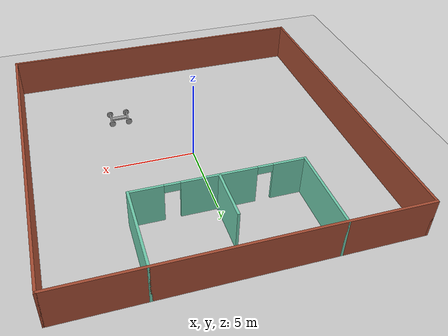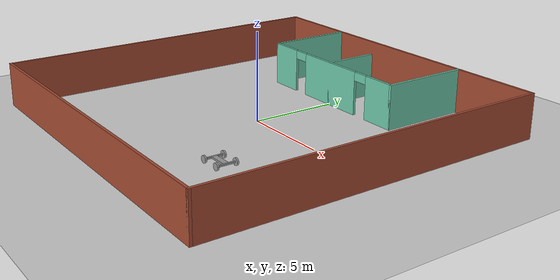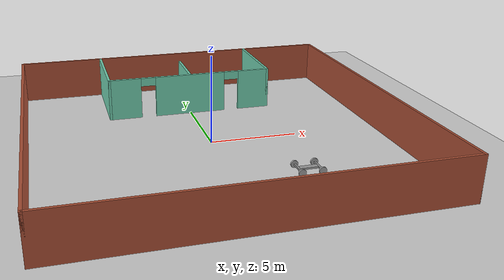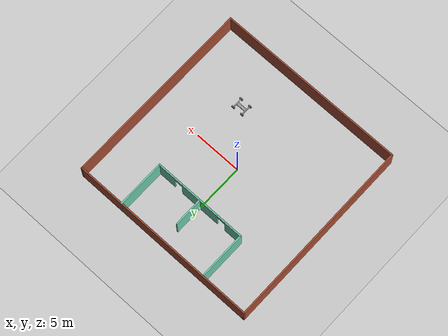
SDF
<sdf version="1.6">
 <world name="default">
  <model name="ground_plane">
   <static>1</static>
   <link name="link">
    <collision name="collision">
     <geometry><plane><normal>0 0 1</normal><size>100 100</size></plane></geometry>
     <surface>
      <contact><collide_bitmask>65535</collide_bitmask></contact>
      <friction><ode><mu>100</mu><mu2>50</mu2></ode></friction>
     </surface>
    </collision>
    <visual name="visual">
     <cast_shadows>0</cast_shadows>
     <geometry><plane><normal>0 0 1</normal><size>100 100</size></plane></geometry>
     <material>
      <script><uri>file://media/materials/scripts/gazebo.material</uri><name>Gazebo/Grey</name></script>
     </material>
    </visual>
   </link>
  </model>
  <model name="Room">
   <pose>-0.006109 0.018836 0 0 -0 0</pose>
   <link name="Wall_0">
    <collision name="Wall_0_Collision">
     <geometry><box><size>20.15 0.15 2.5</size></box></geometry>
     <pose>0 0 1.25 0 -0 0</pose>
    </collision>
    <visual name="Wall_0_Visual">
     <pose>0 0 1.25 0 -0 0</pose>
     <geometry><box><size>20.15 0.15 2.5</size></box></geometry>
     <material>
      <script><uri>file://media/materials/scripts/gazebo.material</uri><name>Gazebo/Bricks</name></script>
      <ambient>1 1 1 1</ambient>
     </material>
     <meta><layer>0</layer></meta>
    </visual>
    <pose>-10 0 0 0 -0 -1.5708</pose>
   </link>
   <link name="Wall_10">
    <collision name="Wall_10_Collision">
     <geometry><box><size>5.15 0.15 2.5</size></box></geometry>
     <pose>0 0 1.25 0 -0 0</pose>
    </collision>
    <visual name="Wall_10_Visual">
     <pose>0 0 1.25 0 -0 0</pose>
     <geometry><box><size>5.15 0.15 2.5</size></box></geometry>
     <material>
      <script><uri>file://media/materials/scripts/gazebo.material</uri><name>Gazebo/Grey</name></script>
      <ambient>0.435294 0.796078 0.67451 1</ambient>
     </material>
     <meta><layer>0</layer></meta>
    </visual>
    <pose>5 7.5 0 0 -0 1.5708</pose>
   </link>
   <link name="Wall_12">
    <collision name="Wall_12_Collision">
     <geometry><box><size>3.15 0.15 2.5</size></box></geometry>
     <pose>0 0 1.25 0 -0 0</pose>
    </collision>
    <visual name="Wall_12_Visual">
     <pose>0 0 1.25 0 -0 0</pose>
     <geometry><box><size>3.15 0.15 2.5</size></box></geometry>
     <material>
      <script><uri>file://media/materials/scripts/gazebo.material</uri><name>Gazebo/Grey</name></script>
      <ambient>0.435294 0.796078 0.67451 1</ambient>
     </material>
     <meta><layer>0</layer></meta>
    </visual>
    <pose>0 6.5 0 0 -0 1.5708</pose>
   </link>
   <link name="Wall_2">
    <collision name="Wall_2_Collision">
     <geometry><box><size>20.15 0.15 2.5</size></box></geometry>
     <pose>0 0 1.25 0 -0 0</pose>
    </collision>
    <visual name="Wall_2_Visual">
     <pose>0 0 1.25 0 -0 0</pose>
     <geometry><box><size>20.15 0.15 2.5</size></box></geometry>
     <material>
      <script><uri>file://media/materials/scripts/gazebo.material</uri><name>Gazebo/Bricks</name></script>
      <ambient>1 1 1 1</ambient>
     </material>
     <meta><layer>0</layer></meta>
    </visual>
    <pose>0 10 0 0 -0 0</pose>
   </link>
   <link name="Wall_4">
    <collision name="Wall_4_Collision">
     <geometry><box><size>20.15 0.15 2.5</size></box></geometry>
     <pose>0 0 1.25 0 -0 0</pose>
    </collision>
    <visual name="Wall_4_Visual">
     <pose>0 0 1.25 0 -0 0</pose>
     <geometry><box><size>20.15 0.15 2.5</size></box></geometry>
     <material>
      <script><uri>file://media/materials/scripts/gazebo.material</uri><name>Gazebo/Bricks</name></script>
      <ambient>1 1 1 1</ambient>
     </material>
     <meta><layer>0</layer></meta>
    </visual>
    <pose>10 0 0 0 -0 -1.5708</pose>
   </link>
   <link name="Wall_6">
    <collision name="Wall_6_Collision">
     <geometry><box><size>20.15 0.15 2.5</size></box></geometry>
     <pose>0 0 1.25 0 -0 0</pose>
    </collision>
    <visual name="Wall_6_Visual">
     <pose>0 0 1.25 0 -0 0</pose>
     <geometry><box><size>20.15 0.15 2.5</size></box></geometry>
     <material>
      <script><uri>file://media/materials/scripts/gazebo.material</uri><name>Gazebo/Bricks</name></script>
      <ambient>1 1 1 1</ambient>
     </material>
     <meta><layer>0</layer></meta>
    </visual>
    <pose>0 -10 0 0 -0 0</pose>
   </link>
   <link name="Wall_8">
    <collision name="Wall_8_Collision">
     <geometry><box><size>5.15 0.15 2.5</size></box></geometry>
     <pose>0 0 1.25 0 -0 0</pose>
    </collision>
    <visual name="Wall_8_Visual">
     <pose>0 0 1.25 0 -0 0</pose>
     <geometry><box><size>5.15 0.15 2.5</size></box></geometry>
     <material>
      <script><uri>file://media/materials/scripts/gazebo.material</uri><name>Gazebo/Grey</name></script>
      <ambient>0.435294 0.796078 0.67451 1</ambient>
     </material>
     <meta><layer>0</layer></meta>
    </visual>
    <pose>-5 7.5 0 0 -0 -1.5708</pose>
   </link>
   <link name="Wall_9">
    <pose>0 5 0 0 -0 0</pose>
    <visual name="Wall_9_Visual_0">
     <pose>-4.07964 0 1.25 0 -0 0</pose>
     <geometry><box><size>1.99073 0.15 2.5</size></box></geometry>
     <material>
      <script><uri>file://media/materials/scripts/gazebo.material</uri><name>Gazebo/Grey</name></script>
      <ambient>0.435294 0.796078 0.67451 1</ambient>
     </material>
     <meta><layer>0</layer></meta>
    </visual>
    <collision name="Wall_9_Collision_0">
     <geometry><box><size>1.99073 0.15 2.5</size></box></geometry>
     <pose>-4.07964 0 1.25 0 -0 0</pose>
    </collision>
    <visual name="Wall_9_Visual_1">
     <pose>-0.008186 0 1.25 0 -0 0</pose>
     <geometry><box><size>4.35217 0.15 2.5</size></box></geometry>
     <material>
      <script><uri>file://media/materials/scripts/gazebo.material</uri><name>Gazebo/Grey</name></script>
      <ambient>0.435294 0.796078 0.67451 1</ambient>
     </material>
     <meta><layer>0</layer></meta>
    </visual>
    <collision name="Wall_9_Collision_1">
     <geometry><box><size>4.35217 0.15 2.5</size></box></geometry>
     <pose>-0.008186 0 1.25 0 -0 0</pose>
    </collision>
    <visual name="Wall_9_Visual_2">
     <pose>4.07145 0 1.25 0 -0 0</pose>
     <geometry><box><size>2.0071 0.15 2.5</size></box></geometry>
     <material>
      <script><uri>file://media/materials/scripts/gazebo.material</uri><name>Gazebo/Grey</name></script>
      <ambient>0.435294 0.796078 0.67451 1</ambient>
     </material>
     <meta><layer>0</layer></meta>
    </visual>
    <collision name="Wall_9_Collision_2">
     <geometry><box><size>2.0071 0.15 2.5</size></box></geometry>
     <pose>4.07145 0 1.25 0 -0 0</pose>
    </collision>
    <visual name="Wall_9_Visual_3">
     <pose>-2.63427 0 2.25 0 -0 0</pose>
     <geometry><box><size>0.9 0.15 0.5</size></box></geometry>
     <material>
      <script><uri>file://media/materials/scripts/gazebo.material</uri><name>Gazebo/Grey</name></script>
      <ambient>0.435294 0.796078 0.67451 1</ambient>
     </material>
     <meta><layer>0</layer></meta>
    </visual>
    <collision name="Wall_9_Collision_3">
     <geometry><box><size>0.9 0.15 0.5</size></box></geometry>
     <pose>-2.63427 0 2.25 0 -0 0</pose>
    </collision>
    <visual name="Wall_9_Visual_4">
     <pose>2.6179 0 2.25 0 -0 0</pose>
     <geometry><box><size>0.9 0.15 0.5</size></box></geometry>
     <material>
      <script><uri>file://media/materials/scripts/gazebo.material</uri><name>Gazebo/Grey</name></script>
      <ambient>0.435294 0.796078 0.67451 1</ambient>
     </material>
     <meta><layer>0</layer></meta>
    </visual>
    <collision name="Wall_9_Collision_4">
     <geometry><box><size>0.9 0.15 0.5</size></box></geometry>
     <pose>2.6179 0 2.25 0 -0 0</pose>
    </collision>
   </link>
   <static>1</static>
  </model>
  <model name="humanoid1_1">
   <link name="link_0">
    <inertial>
     <mass>1</mass>
     <inertia>
      <ixx>0.166667</ixx>
      <ixy>0</ixy>
      <ixz>0</ixz>
      <iyy>0.166667</iyy>
      <iyz>0</iyz>
      <izz>0.166667</izz>
     </inertia>
    </inertial>
    <pose>-0.027143 0 0 0 -0 0</pose>
    <visual name="visual">
     <geometry><box><size>1 0.3 0.1</size></box></geometry>
     <material>
      <lighting>1</lighting>
      <script><uri>file://media/materials/scripts/gazebo.material</uri><name>Gazebo/Grey</name></script>
      <shader type="pixel"><normal_map>__default__</normal_map></shader>
      <ambient>0.3 0.3 0.3 1</ambient>
      <diffuse>0.7 0.7 0.7 1</diffuse>
      <specular>0.01 0.01 0.01 1</specular>
      <emissive>0 0 0 1</emissive>
     </material>
    </visual>
    <collision name="collision">
     <geometry><box><size>1 0.3 0.1</size></box></geometry>
     <surface>
      <friction>
       <ode><mu>1</mu><mu2>1</mu2><fdir1>0 0 0</fdir1><slip1>0</slip1><slip2>0</slip2></ode>
       <torsional>
        <coefficient>1</coefficient>
        <patch_radius>0</patch_radius>
        <surface_radius>0</surface_radius>
        <use_patch_radius>1</use_patch_radius>
        <ode><slip>0</slip></ode>
       </torsional>
      </friction>
      <bounce><restitution_coefficient>0</restitution_coefficient><threshold>1e+06</threshold></bounce>
      <contact>
       <collide_without_contact>0</collide_without_contact>
       <collide_without_contact_bitmask>1</collide_without_contact_bitmask>
       <collide_bitmask>1</collide_bitmask>
       <ode>
        <soft_cfm>0</soft_cfm>
        <soft_erp>0.2</soft_erp>
        <kp>1e+13</kp>
        <kd>1</kd>
        <max_vel>0.01</max_vel>
        <min_depth>0</min_depth>
       </ode>
       <bullet>
        <split_impulse>1</split_impulse>
        <split_impulse_penetration_threshold>-0.01</split_impulse_penetration_threshold>
        <soft_cfm>0</soft_cfm>
        <soft_erp>0.2</soft_erp>
        <kp>1e+13</kp>
        <kd>1</kd>
       </bullet>
      </contact>
     </surface>
    </collision>
   </link>
   <link name="link_1_clone_clone">
    <inertial>
     <mass>1</mass>
     <inertia><ixx>0.145833</ixx><ixy>0</ixy><ixz>0</ixz><iyy>0.145833</iyy><iyz>0</iyz><izz>0.125</izz></inertia>
    </inertial>
    <pose>0.522857 -0.550019 0 1.5707 -0 0</pose>
    <visual name="visual">
     <geometry><cylinder><radius>0.2</radius><length>0.1</length></cylinder></geometry>
     <material>
      <lighting>1</lighting>
      <script><uri>file://media/materials/scripts/gazebo.material</uri><name>Gazebo/Grey</name></script>
      <shader type="pixel"><normal_map>__default__</normal_map></shader>
      <ambient>0.3 0.3 0.3 1</ambient>
      <diffuse>0.7 0.7 0.7 1</diffuse>
      <specular>0.01 0.01 0.01 1</specular>
      <emissive>0 0 0 1</emissive>
     </material>
    </visual>
    <collision name="collision">
     <geometry><cylinder><radius>0.2</radius><length>0.1</length></cylinder></geometry>
     <surface>
      <friction>
       <ode><mu>1</mu><mu2>1</mu2><fdir1>0 0 0</fdir1><slip1>0</slip1><slip2>0</slip2></ode>
       <torsional>
        <coefficient>1</coefficient>
        <patch_radius>0</patch_radius>
        <surface_radius>0</surface_radius>
        <use_patch_radius>1</use_patch_radius>
        <ode><slip>0</slip></ode>
       </torsional>
      </friction>
      <bounce><restitution_coefficient>0</restitution_coefficient><threshold>1e+06</threshold></bounce>
      <contact>
       <collide_without_contact>0</collide_without_contact>
       <collide_without_contact_bitmask>1</collide_without_contact_bitmask>
       <collide_bitmask>1</collide_bitmask>
       <ode>
        <soft_cfm>0</soft_cfm>
        <soft_erp>0.2</soft_erp>
        <kp>1e+13</kp>
        <kd>1</kd>
        <max_vel>0.01</max_vel>
        <min_depth>0</min_depth>
       </ode>
       <bullet>
        <split_impulse>1</split_impulse>
        <split_impulse_penetration_threshold>-0.01</split_impulse_penetration_threshold>
        <soft_cfm>0</soft_cfm>
        <soft_erp>0.2</soft_erp>
        <kp>1e+13</kp>
        <kd>1</kd>
       </bullet>
      </contact>
     </surface>
    </collision>
   </link>
   <link name="link_1_clone_clone_0">
    <inertial>
     <mass>1</mass>
     <inertia><ixx>0.145833</ixx><ixy>0</ixy><ixz>0</ixz><iyy>0.145833</iyy><iyz>0</iyz><izz>0.125</izz></inertia>
    </inertial>
    <pose>-0.577143 -0.550019 0 1.5707 -0 0</pose>
    <visual name="visual">
     <geometry><cylinder><radius>0.2</radius><length>0.1</length></cylinder></geometry>
     <material>
      <lighting>1</lighting>
      <script><uri>file://media/materials/scripts/gazebo.material</uri><name>Gazebo/Grey</name></script>
      <shader type="pixel"><normal_map>__default__</normal_map></shader>
      <ambient>0.3 0.3 0.3 1</ambient>
      <diffuse>0.7 0.7 0.7 1</diffuse>
      <specular>0.01 0.01 0.01 1</specular>
      <emissive>0 0 0 1</emissive>
     </material>
    </visual>
    <collision name="collision">
     <geometry><cylinder><radius>0.2</radius><length>0.1</length></cylinder></geometry>
     <surface>
      <friction>
       <ode><mu>1</mu><mu2>1</mu2><fdir1>0 0 0</fdir1><slip1>0</slip1><slip2>0</slip2></ode>
       <torsional>
        <coefficient>1</coefficient>
        <patch_radius>0</patch_radius>
        <surface_radius>0</surface_radius>
        <use_patch_radius>1</use_patch_radius>
        <ode><slip>0</slip></ode>
       </torsional>
      </friction>
      <bounce><restitution_coefficient>0</restitution_coefficient><threshold>1e+06</threshold></bounce>
      <contact>
       <collide_without_contact>0</collide_without_contact>
       <collide_without_contact_bitmask>1</collide_without_contact_bitmask>
       <collide_bitmask>1</collide_bitmask>
       <ode>
        <soft_cfm>0</soft_cfm>
        <soft_erp>0.2</soft_erp>
        <kp>1e+13</kp>
        <kd>1</kd>
        <max_vel>0.01</max_vel>
        <min_depth>0</min_depth>
       </ode>
       <bullet>
        <split_impulse>1</split_impulse>
        <split_impulse_penetration_threshold>-0.01</split_impulse_penetration_threshold>
        <soft_cfm>0</soft_cfm>
        <soft_erp>0.2</soft_erp>
        <kp>1e+13</kp>
        <kd>1</kd>
       </bullet>
      </contact>
     </surface>
    </collision>
   </link>
   <link name="link_1_clone_clone_0_clone">
    <inertial>
     <mass>1</mass>
     <inertia><ixx>0.145833</ixx><ixy>0</ixy><ixz>0</ixz><iyy>0.145833</iyy><iyz>0</iyz><izz>0.125</izz></inertia>
    </inertial>
    <pose>-0.577143 0.550019 0 1.5707 -0 0</pose>
    <visual name="visual">
     <geometry><cylinder><radius>0.2</radius><length>0.1</length></cylinder></geometry>
     <material>
      <lighting>1</lighting>
      <script><uri>file://media/materials/scripts/gazebo.material</uri><name>Gazebo/Grey</name></script>
      <shader type="pixel"><normal_map>__default__</normal_map></shader>
      <ambient>0.3 0.3 0.3 1</ambient>
      <diffuse>0.7 0.7 0.7 1</diffuse>
      <specular>0.01 0.01 0.01 1</specular>
      <emissive>0 0 0 1</emissive>
     </material>
    </visual>
    <collision name="collision">
     <geometry><cylinder><radius>0.2</radius><length>0.1</length></cylinder></geometry>
     <surface>
      <friction>
       <ode><mu>1</mu><mu2>1</mu2><fdir1>0 0 0</fdir1><slip1>0</slip1><slip2>0</slip2></ode>
       <torsional>
        <coefficient>1</coefficient>
        <patch_radius>0</patch_radius>
        <surface_radius>0</surface_radius>
        <use_patch_radius>1</use_patch_radius>
        <ode><slip>0</slip></ode>
       </torsional>
      </friction>
      <bounce><restitution_coefficient>0</restitution_coefficient><threshold>1e+06</threshold></bounce>
      <contact>
       <collide_without_contact>0</collide_without_contact>
       <collide_without_contact_bitmask>1</collide_without_contact_bitmask>
       <collide_bitmask>1</collide_bitmask>
       <ode>
        <soft_cfm>0</soft_cfm>
        <soft_erp>0.2</soft_erp>
        <kp>1e+13</kp>
        <kd>1</kd>
        <max_vel>0.01</max_vel>
        <min_depth>0</min_depth>
       </ode>
       <bullet>
        <split_impulse>1</split_impulse>
        <split_impulse_penetration_threshold>-0.01</split_impulse_penetration_threshold>
        <soft_cfm>0</soft_cfm>
        <soft_erp>0.2</soft_erp>
        <kp>1e+13</kp>
        <kd>1</kd>
       </bullet>
      </contact>
     </surface>
    </collision>
   </link>
   <link name="link_1_clone_clone_1">
    <inertial>
     <mass>1</mass>
     <inertia><ixx>0.145833</ixx><ixy>0</ixy><ixz>0</ixz><iyy>0.145833</iyy><iyz>0</iyz><izz>0.125</izz></inertia>
    </inertial>
    <pose>0.522857 0.550019 0 1.5707 -0 0</pose>
    <visual name="visual">
     <geometry><cylinder><radius>0.2</radius><length>0.1</length></cylinder></geometry>
     <material>
      <lighting>1</lighting>
      <script><uri>file://media/materials/scripts/gazebo.material</uri><name>Gazebo/Grey</name></script>
      <shader type="pixel"><normal_map>__default__</normal_map></shader>
      <ambient>0.3 0.3 0.3 1</ambient>
      <diffuse>0.7 0.7 0.7 1</diffuse>
      <specular>0.01 0.01 0.01 1</specular>
      <emissive>0 0 0 1</emissive>
     </material>
    </visual>
    <collision name="collision">
     <geometry><cylinder><radius>0.2</radius><length>0.1</length></cylinder></geometry>
     <surface>
      <friction>
       <ode><mu>1</mu><mu2>1</mu2><fdir1>0 0 0</fdir1><slip1>0</slip1><slip2>0</slip2></ode>
       <torsional>
        <coefficient>1</coefficient>
        <patch_radius>0</patch_radius>
        <surface_radius>0</surface_radius>
        <use_patch_radius>1</use_patch_radius>
        <ode><slip>0</slip></ode>
       </torsional>
      </friction>
      <bounce><restitution_coefficient>0</restitution_coefficient><threshold>1e+06</threshold></bounce>
      <contact>
       <collide_without_contact>0</collide_without_contact>
       <collide_without_contact_bitmask>1</collide_without_contact_bitmask>
       <collide_bitmask>1</collide_bitmask>
       <ode>
        <soft_cfm>0</soft_cfm>
        <soft_erp>0.2</soft_erp>
        <kp>1e+13</kp>
        <kd>1</kd>
        <max_vel>0.01</max_vel>
        <min_depth>0</min_depth>
       </ode>
       <bullet>
        <split_impulse>1</split_impulse>
        <split_impulse_penetration_threshold>-0.01</split_impulse_penetration_threshold>
        <soft_cfm>0</soft_cfm>
        <soft_erp>0.2</soft_erp>
        <kp>1e+13</kp>
        <kd>1</kd>
       </bullet>
      </contact>
     </surface>
    </collision>
   </link>
   <link name="link_3">
    <inertial>
     <mass>1</mass>
     <inertia>
      <ixx>0.166667</ixx>
      <ixy>0</ixy>
      <ixz>0</ixz>
      <iyy>0.166667</iyy>
      <iyz>0</iyz>
      <izz>0.166667</izz>
     </inertia>
    </inertial>
    <pose>-0.577143 0 0 0 -0 0</pose>
    <visual name="visual">
     <geometry><box><size>0.1 1 0.1</size></box></geometry>
     <material>
      <lighting>1</lighting>
      <script><uri>file://media/materials/scripts/gazebo.material</uri><name>Gazebo/Grey</name></script>
      <shader type="pixel"><normal_map>__default__</normal_map></shader>
      <ambient>0.3 0.3 0.3 1</ambient>
      <diffuse>0.7 0.7 0.7 1</diffuse>
      <specular>0.01 0.01 0.01 1</specular>
      <emissive>0 0 0 1</emissive>
     </material>
    </visual>
    <collision name="collision">
     <geometry><box><size>0.1 1 0.1</size></box></geometry>
     <surface>
      <friction>
       <ode><mu>1</mu><mu2>1</mu2><fdir1>0 0 0</fdir1><slip1>0</slip1><slip2>0</slip2></ode>
       <torsional>
        <coefficient>1</coefficient>
        <patch_radius>0</patch_radius>
        <surface_radius>0</surface_radius>
        <use_patch_radius>1</use_patch_radius>
        <ode><slip>0</slip></ode>
       </torsional>
      </friction>
      <bounce><restitution_coefficient>0</restitution_coefficient><threshold>1e+06</threshold></bounce>
      <contact>
       <collide_without_contact>0</collide_without_contact>
       <collide_without_contact_bitmask>1</collide_without_contact_bitmask>
       <collide_bitmask>1</collide_bitmask>
       <ode>
        <soft_cfm>0</soft_cfm>
        <soft_erp>0.2</soft_erp>
        <kp>1e+13</kp>
        <kd>1</kd>
        <max_vel>0.01</max_vel>
        <min_depth>0</min_depth>
       </ode>
       <bullet>
        <split_impulse>1</split_impulse>
        <split_impulse_penetration_threshold>-0.01</split_impulse_penetration_threshold>
        <soft_cfm>0</soft_cfm>
        <soft_erp>0.2</soft_erp>
        <kp>1e+13</kp>
        <kd>1</kd>
       </bullet>
      </contact>
     </surface>
    </collision>
   </link>
   <link name="link_3_clone">
    <inertial>
     <mass>1</mass>
     <inertia>
      <ixx>0.166667</ixx>
      <ixy>0</ixy>
      <ixz>0</ixz>
      <iyy>0.166667</iyy>
      <iyz>0</iyz>
      <izz>0.166667</izz>
     </inertia>
    </inertial>
    <pose>0.522857 0 0 0 -0 0</pose>
    <visual name="visual">
     <geometry><box><size>0.1 1 0.1</size></box></geometry>
     <material>
      <lighting>1</lighting>
      <script><uri>file://media/materials/scripts/gazebo.material</uri><name>Gazebo/Grey</name></script>
      <shader type="pixel"><normal_map>__default__</normal_map></shader>
      <ambient>0.3 0.3 0.3 1</ambient>
      <diffuse>0.7 0.7 0.7 1</diffuse>
      <specular>0.01 0.01 0.01 1</specular>
      <emissive>0 0 0 1</emissive>
     </material>
    </visual>
    <collision name="collision">
     <geometry><box><size>0.1 1 0.1</size></box></geometry>
     <surface>
      <friction>
       <ode><mu>1</mu><mu2>1</mu2><fdir1>0 0 0</fdir1><slip1>0</slip1><slip2>0</slip2></ode>
       <torsional>
        <coefficient>1</coefficient>
        <patch_radius>0</patch_radius>
        <surface_radius>0</surface_radius>
        <use_patch_radius>1</use_patch_radius>
        <ode><slip>0</slip></ode>
       </torsional>
      </friction>
      <bounce><restitution_coefficient>0</restitution_coefficient><threshold>1e+06</threshold></bounce>
      <contact>
       <collide_without_contact>0</collide_without_contact>
       <collide_without_contact_bitmask>1</collide_without_contact_bitmask>
       <collide_bitmask>1</collide_bitmask>
       <ode>
        <soft_cfm>0</soft_cfm>
        <soft_erp>0.2</soft_erp>
        <kp>1e+13</kp>
        <kd>1</kd>
        <max_vel>0.01</max_vel>
        <min_depth>0</min_depth>
       </ode>
       <bullet>
        <split_impulse>1</split_impulse>
        <split_impulse_penetration_threshold>-0.01</split_impulse_penetration_threshold>
        <soft_cfm>0</soft_cfm>
        <soft_erp>0.2</soft_erp>
        <kp>1e+13</kp>
        <kd>1</kd>
       </bullet>
      </contact>
     </surface>
    </collision>
   </link>
   <joint name="link_0_JOINT_6" type="fixed">
    <parent>link_0</parent>
    <child>link_3_clone</child>
    <physics>
     <ode><limit><cfm>0</cfm><erp>0.2</erp></limit><suspension><cfm>0</cfm><erp>0.2</erp></suspension></ode>
    </physics>
   </joint>
   <joint name="link_0_JOINT_7" type="fixed">
    <parent>link_0</parent>
    <child>link_3</child>
    <physics>
     <ode><limit><cfm>0</cfm><erp>0.2</erp></limit><suspension><cfm>0</cfm><erp>0.2</erp></suspension></ode>
    </physics>
   </joint>
   <joint name="link_3_JOINT_10" type="revolute">
    <parent>link_3</parent>
    <child>link_1_clone_clone_0</child>
    <axis>
     <xyz>1 0 0</xyz>
     <use_parent_model_frame>0</use_parent_model_frame>
     <limit>
      <lower>-1.79769e+308</lower>
      <upper>1.79769e+308</upper>
      <effort>-1</effort>
      <velocity>-1</velocity>
     </limit>
     <dynamics>
      <spring_reference>0</spring_reference>
      <spring_stiffness>0</spring_stiffness>
      <damping>0</damping>
     </dynamics>
    </axis>
    <physics>
     <ode><limit><cfm>0</cfm><erp>0.2</erp></limit><suspension><cfm>0</cfm><erp>0.2</erp></suspension></ode>
    </physics>
   </joint>
   <joint name="link_3_JOINT_9" type="revolute">
    <parent>link_3</parent>
    <child>link_1_clone_clone_0_clone</child>
    <axis>
     <xyz>1 0 0</xyz>
     <use_parent_model_frame>0</use_parent_model_frame>
     <limit>
      <lower>-1.79769e+308</lower>
      <upper>1.79769e+308</upper>
      <effort>-1</effort>
      <velocity>-1</velocity>
     </limit>
     <dynamics>
      <spring_reference>0</spring_reference>
      <spring_stiffness>0</spring_stiffness>
      <damping>0</damping>
     </dynamics>
    </axis>
    <physics>
     <ode><limit><cfm>0</cfm><erp>0.2</erp></limit><suspension><cfm>0</cfm><erp>0.2</erp></suspension></ode>
    </physics>
   </joint>
   <joint name="link_3_clone_JOINT_11" type="revolute">
    <parent>link_3_clone</parent>
    <child>link_1_clone_clone</child>
    <axis>
     <xyz>1 0 0</xyz>
     <use_parent_model_frame>0</use_parent_model_frame>
     <limit>
      <lower>-1.79769e+308</lower>
      <upper>1.79769e+308</upper>
      <effort>-1</effort>
      <velocity>-1</velocity>
     </limit>
     <dynamics>
      <spring_reference>0</spring_reference>
      <spring_stiffness>0</spring_stiffness>
      <damping>0</damping>
     </dynamics>
    </axis>
    <physics>
     <ode><limit><cfm>0</cfm><erp>0.2</erp></limit><suspension><cfm>0</cfm><erp>0.2</erp></suspension></ode>
    </physics>
   </joint>
   <joint name="link_3_clone_JOINT_12" type="revolute">
    <parent>link_3_clone</parent>
    <child>link_1_clone_clone_1</child>
    <axis>
     <xyz>1 0 0</xyz>
     <use_parent_model_frame>0</use_parent_model_frame>
     <limit>
      <lower>-1.79769e+308</lower>
      <upper>1.79769e+308</upper>
      <effort>-1</effort>
      <velocity>-1</velocity>
     </limit>
     <dynamics>
      <spring_reference>0</spring_reference>
      <spring_stiffness>0</spring_stiffness>
      <damping>0</damping>
     </dynamics>
    </axis>
    <physics>
     <ode><limit><cfm>0</cfm><erp>0.2</erp></limit><suspension><cfm>0</cfm><erp>0.2</erp></suspension></ode>
    </physics>
   </joint>
   <static>0</static>
   <pose>3.85915 -4.77431 0.199997 6e-06 -0 0.001553</pose>
  </model>
 </world>
</sdf>
